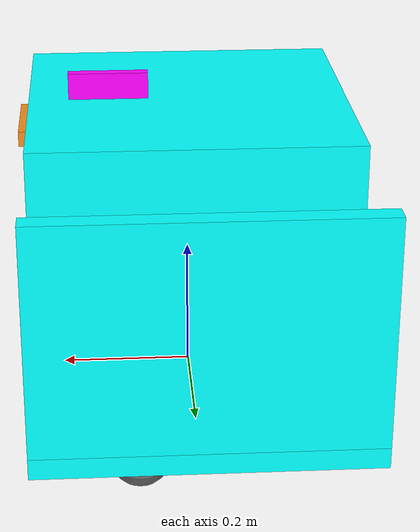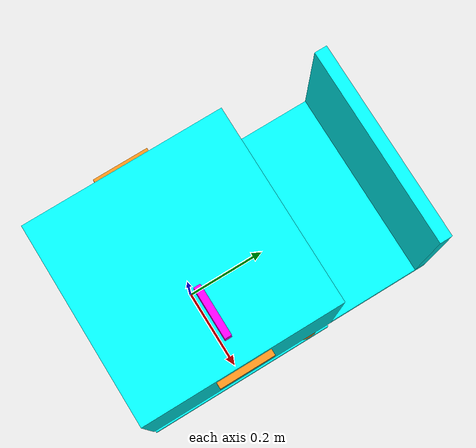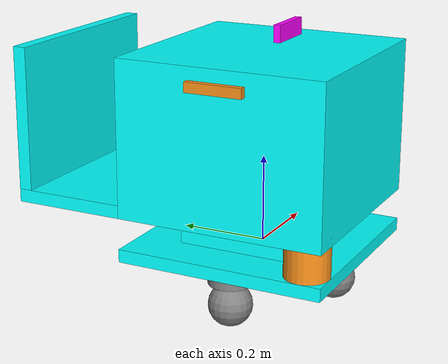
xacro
<?xml version="1.0"?>
<robot name="bot" xmlns:xacro="http://ros.org/wiki/xacro">

	<!-- Define robot constants -->
	<!-- If changed, check also 'simu_bot_driver.cpp' for publish_command() -->
	<!-- If need to change orientation, just change wheels, see wheels positions below + check lidars posiions and orientation in 'lidars_description.urdf.xacro'-->
	<xacro:property name="square1_length" value="0.48"/>
	<xacro:property name="square1_height" value="0.03"/>
	<xacro:property name="square2_length" value="0.277"/>
	<xacro:property name="square2_height" value="0.072"/>
	<xacro:property name="square3_height" value="0.36"/>
	<xacro:property name="support1_width" value="0.26"/>
	<xacro:property name="support2_height" value="0.33"/>

	<xacro:property name="wheels_radius" value="0.05"/>
	<xacro:property name="triangle_lenght" value="0.32"/> <!-- Side's Triangle length-->
	<xacro:property name="wheels_distance" value="${sqrt(((3*(triangle_lenght**4))/16)+((triangle_lenght**2)/4))}"/> <!-- Radius between origin and wheels-->
	<xacro:property name="wheels_zoffset" value="0.03"/>

	<!-- Define some commonly used intertial properties  -->
	<xacro:macro name="box_inertia" params="m w h d">
		<inertial>
		<origin xyz="0 0 0" rpy="${pi/2} 0 ${pi/2}"/>
		<mass value="${m}"/>
		<inertia ixx="${(m/12) * (h*h + d*d)}" ixy="0.0" ixz="0.0" iyy="${(m/12) * (w*w + d*d)}" iyz="0.0" izz="${(m/12) * (w*w + h*h)}"/>
		</inertial>
	</xacro:macro>

	<xacro:macro name="cylinder_inertia" params="m r h">
		<inertial>
		<origin xyz="0 0 0" rpy="${pi/2} 0 0" />
		<mass value="${m}"/>
		<inertia ixx="${(m/12) * (3*r*r + h*h)}" ixy = "0" ixz = "0" iyy="${(m/12) * (3*r*r + h*h)}" iyz = "0" izz="${(m/2) * (r*r)}"/>
		</inertial>
	</xacro:macro>

	<xacro:macro name="sphere_inertia" params="m r">
		<inertial>
		<mass value="${m}"/>
		<inertia ixx="${(2/5) * m * (r*r)}" ixy="0.0" ixz="0.0" iyy="${(2/5) * m * (r*r)}" iyz="0.0" izz="${(2/5) * m * (r*r)}"/>
		</inertial>
	</xacro:macro>

	<!-- Robot Base -->
	<!-- Dummy link may need to be added because KDL does not support root link with inertia. But simulation not working with it-->

	<link name="base_link">
		<visual>
		<geometry>
			<box size="${square1_length} ${square1_length} ${square1_height}"/>
		</geometry>
		<material name="Cyan">
			<color rgba="0 1.0 1.0 1.0"/>
		</material>
		</visual>
		<collision>
		<geometry>
			<box size="${square1_length} ${square1_length} ${square1_height}"/>
		</geometry>
		</collision>
		<xacro:box_inertia m="15" w="${square1_length}" d="${square1_length}" h="${square1_height}"/>
	</link>

	<!-- Others Robot structures -->
	<link name="base2_link">
		<visual>
		<geometry>
			<box size="${square2_length} ${square2_length} ${square2_height}"/>
		</geometry>
		<material name="Cyan">
			<color rgba="0 1.0 1.0 1.0"/>
		</material>
		</visual>
		<collision>
		<geometry>
			<box size="${square2_length} ${square2_length} ${square2_height*0.8}"/>
		</geometry>
		</collision>
		<xacro:box_inertia m="0.5" w="${square2_length}" d="${square2_length}" h="${square2_height}"/>
	</link>
	<joint name="base2_joint" type="fixed">
		<parent link="base_link"/>
		<child link="base2_link"/>
		<origin xyz="0.0 0.0 ${(square1_height/2)+(square2_height/2)}" rpy="0 0 0"/>
	</joint>

	<link name="support1_link">
		<visual>
		<geometry>
			<box size="${square1_length} ${support1_width} ${square1_height}"/>
		</geometry>
		<material name="Cyan">
			<color rgba="0 1.0 1.0 1.0"/>
		</material>
		</visual>
		<collision>
		<geometry>
			<box size="${square1_length} ${support1_width} ${square1_height}"/>
		</geometry>
		</collision>
		<xacro:box_inertia m="0.5" w="${square1_length}" d="${support1_width}" h="${square1_height}"/>
	</link>
	<joint name="support1_joint" type="fixed">
		<parent link="base3_link"/>
		<child link="support1_link"/>
		<origin xyz="0.0 ${square1_length/2 + support1_width/2} ${square1_height/2 - square3_height/2}" rpy="0 0 0"/>
	</joint>

	<link name="support2_link">
		<visual>
		<geometry>
			<box size="${square1_length} ${square1_height} ${support2_height}"/>
		</geometry>
		<material name="Cyan">
			<color rgba="0 1.0 1.0 1.0"/>
		</material>
		</visual>
		<collision>
		<geometry>
			<box size="${square1_length} ${square1_height} ${support2_height}"/>
		</geometry>
		</collision>
		<xacro:box_inertia m="0.5" w="${square1_length}" d="${square1_height}" h="${support2_height}"/>
	</link>
	<joint name="support2_joint" type="fixed">
		<parent link="support1_link"/>
		<child link="support2_link"/>
		<origin xyz="0.0 ${support1_width/2 - square1_height/2} ${support2_height/2 + square1_height/2}" rpy="0 0 0"/>
	</joint>

	<link name="base3_link">
		<visual>
		<geometry>
			<box size="${square1_length} ${square1_length} ${square3_height}"/>
		</geometry>
		<material name="Cyan">
			<color rgba="0 1.0 1.0 1.0"/>
		</material>
		</visual>
		<collision>
		<geometry>
			<box size="${square1_length} ${square1_length} ${square3_height}"/>
		</geometry>
		</collision>
		<xacro:box_inertia m="0.5" w="${square1_length}" d="${square1_length}" h="${square3_height}"/>
	</link>
	<joint name="base3_joint" type="fixed">
		<parent link="base_link"/>
		<child link="base3_link"/>
		<origin xyz="0.0 0.0 ${(square1_height/2)+square2_height+(square3_height/2)}" rpy="0 0 0"/>
	</joint>

	<link name="base4_link">
		<visual>
		<geometry>
			<box size="${square1_length/4} ${square1_length/30} ${0.04}"/>
		</geometry>
		<material name="Green">
			<color rgba="1.0 0.0 1.0 1.0"/>
		</material>
		</visual>
	</link>
	<joint name="base4_joint" type="fixed">
		<parent link="base3_link"/>
		<child link="base4_link"/>
		<origin xyz="${square1_length/2-square1_length/4} 0.0 ${(square3_height/2)+0.02}" rpy="0 0 0"/>
	</joint>

	<!-- Robot Footprint-->
	<link name="base_footprint">
		<xacro:box_inertia m="0" w="0" d="0" h="0"/>
	</link>

	<joint name="base_joint" type="fixed">
		<parent link="base_link"/>
		<child link="base_footprint"/>
		<origin xyz="0.0 0.0 ${-(wheels_radius*2+wheels_zoffset+square1_height/2)}" rpy="0 0 0"/>
	</joint>

	  <!-- 3 Wheels and there support to simulate sphere joint -->
	<xacro:macro name="wheel" params="prefix angle type">

		<!--wheel support-->
		<link name="${prefix}_sup_link">
		<visual>
			<geometry>
				<cylinder radius="${wheels_radius}" length="${wheels_zoffset}"/>
			</geometry>
			<material name="Gray">
			<color rgba="0.5 0.5 0.5 1.0"/>
			</material>
		</visual>
		<collision>
			<geometry>
			<cylinder radius="${wheels_radius}" length="${wheels_zoffset/2}"/>
			</geometry>
		</collision>
		<xacro:cylinder_inertia m="2" r="${wheels_radius}" h="${wheels_zoffset}"/>
		</link>
		<joint name="${prefix}_sup_joint" type="continuous">
			<parent link="base_link"/>
			<child link="${prefix}_sup_link"/>
			<origin xyz="${wheels_distance*cos(angle)} ${wheels_distance*sin(angle)} ${-((wheels_zoffset/2)+(square1_height/2))}" rpy="0 0 0"/>
			<axis xyz="0 0 1"/>

		</joint>

		<!--wheel-->
		<link name="${prefix}_link">
		<visual>
			<geometry>
				<sphere radius="${wheels_radius}"/>
			</geometry>
			<material name="Gray">
			<color rgba="0.5 0.5 0.5 1.0"/>
			</material>
		</visual>
		<xacro:if value="${type == 'sphere'}">
			<collision>
			<origin xyz="0 0 0" rpy="0 0 0"/>
			<geometry>
				<sphere radius="${wheels_radius}"/>
			</geometry>
			</collision>
			<xacro:sphere_inertia m="0.5" r="${wheels_radius}"/>
		</xacro:if>
		<xacro:if value="${type == 'cylinder'}">
			<collision>
			<origin xyz="0 0 0" rpy="${pi/2} 0 0"/>
			<geometry>
				<cylinder radius="${wheels_radius}" length="${wheels_radius*2}"/>
			</geometry>
			</collision>
			<xacro:cylinder_inertia m="0.5" r="${wheels_radius}" h="${wheels_radius*2}"/>
		</xacro:if>
		</link>
		<joint name="${prefix}_joint" type="continuous">
			<parent link="${prefix}_sup_link"/>
			<child link="${prefix}_link"/>
			<origin xyz="0.0 0.0 ${-wheels_radius-wheels_zoffset/2}" rpy="0 0 0"/>
			<axis xyz="0 1 0"/>
		</joint>

	</xacro:macro>

	<xacro:wheel prefix="wheel_2" angle="${pi}" type="sphere" />
	<xacro:wheel prefix="wheel_3" angle="${(2*pi/3)+pi}" type="sphere" />
	<xacro:wheel prefix="wheel_1" angle="${(-2*pi/3)+pi}" type="sphere" />

	<xacro:include filename="lidars_description.urdf.xacro"/>
	<xacro:include filename="cameras_description.urdf.xacro"/>
	<!--The simulated IMU seems to be noisy too much even with no noise set, so we don't use it for linear movement-->
	<xacro:include filename="imu_description.urdf.xacro"/>
	<xacro:include filename="gazebo_template.urdf.xacro"/>
	<xacro:include filename="ros2_control.xacro"/>

	<gazebo reference="base4_link">
		<material>Gazebo/Purple</material>
	</gazebo>

	<gazebo reference="base2_link">
		<material>Gazebo/Green</material>
	</gazebo>

</robot>

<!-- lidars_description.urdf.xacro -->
<robot name="bot" xmlns:xacro="http://ros.org/wiki/xacro">

	<!-- THIS FILE NEED TO BE INCLUDED IN 'bot_description.urdf.xacro' -->

	<!--2 LIDAR-->
	<xacro:macro name="lidar" params="prefix x y alpha">
		<link name="${prefix}_link">
			<inertial>
			<origin xyz="0 0 0" rpy="0 0 0"/>
			<mass value="0.125"/>
			<inertia ixx="0.001"  ixy="0"  ixz="0" iyy="0.001" iyz="0" izz="0.001" />
			</inertial>

			<collision>
			<origin xyz="0 0 0" rpy="0 0 0"/>
			<geometry>
				<cylinder radius="0.0508" length="${0.05}"/>
			</geometry>
			</collision>

			<visual>
			<origin xyz="0 0 0" rpy="0 0 0"/>
			<geometry>
				<cylinder radius="0.0508" length="${0.1}"/>
			</geometry>
			</visual>
		</link>

		<joint name="${prefix}_joint" type="fixed">
			<parent link="base_link"/>
			<child link="${prefix}_link"/>
			<origin xyz="${x} ${y} ${square1_height/2+0.1/2}" rpy="0 0 ${alpha}"/>
		</joint>

		<gazebo reference="${prefix}_link">
    		<!-- Instead, we need to add gazebo tags for our links that refer to Gazebo materials -->
        	<material>Gazebo/Orange</material>
			<sensor name="${prefix}" type="ray">	<!--use "gpu_ray" instead of "ray" only when having a dedicated gpu-->
			<always_on>true</always_on>
			<visualize>true</visualize>
			<update_rate>10.0</update_rate>
			<ray>
				<scan>
				<horizontal>
					<samples>360</samples>
					<resolution>1.000000</resolution>
					<min_angle>3.14159265359</min_angle> <!-- Set to π for 180 degrees  = to simulate RPlidars (We need to shift all values according to rpLidars)-->
					<max_angle>${6.28318530718+3.14159265359}</max_angle> <!-- Set to 3π for keeping 360 degres range -->
				</horizontal>
				</scan>
				<range>
				<min>0.07</min>
				<max>12.0</max>
				<resolution>0.015000</resolution>
				</range>
				<noise>
				<type>gaussian</type>
				<mean>0.0</mean>
				<stddev>0.01</stddev>
				</noise>
			</ray>
			<plugin name="${prefix}_scan" filename="libgazebo_ros_ray_sensor.so">
				<ros>
				<remapping>~/out:=${prefix}/scan</remapping>
				</ros>
				<output_type>sensor_msgs/LaserScan</output_type>
				<frame_name>${prefix}_link</frame_name>
			</plugin>
			</sensor>
		</gazebo>
	</xacro:macro>

	<xacro:lidar prefix="lidar2" x="${-((square1_length/2)-0.0508)}" y="${-((square1_length/2)-0.0508)}" alpha="${pi/4}" />
	<xacro:lidar prefix="lidar1" x="${(square1_length/2)-0.0508}" y="${(square1_length/2)-0.0508}" alpha="${-3*pi/4}" />

</robot>

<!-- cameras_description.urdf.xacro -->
<robot name="bot" xmlns:xacro="http://ros.org/wiki/xacro">

	<!-- THIS FILE NEED TO BE INCLUDED IN 'bot_description.urdf.xacro' -->

	<!-- Copied from:  zed_wrapper/urdf/zed_macro.urdf.xacro-->

	<xacro:include filename="$(find zed_wrapper)/urdf/include/materials.urdf.xacro" />
	<xacro:property name="M_PI"     value="3.1415926535897931" />

	<!--
		Parameters:
		- name: the camera's name.  should match the parameter sent to the launch file for this camera
		- model: the tye of camera, one of zed, zedm, zed2, zed2i
	-->
	<xacro:macro name="zed_camera" params="name=zed model=zed x=0.0 y=0.0 z=0.0 rot_z=0.0">

		<xacro:property name="baseline" value="0.06" />
		<xacro:property name="height" value="0.0265" />
		<xacro:property name="bottom_slope" value="0.0" />
		<xacro:property name="screw_offset_x" value="0.0" />
		<xacro:property name="screw_offset_z" value="0.0" />
		<xacro:property name="optical_offset_x" value="0.0" />

		<!-- Camera mounting point (the threaded screw hole in the bottom) -->
		<link name="${name}_camera_link">
			<visual>
			<origin xyz="0 0 0" rpy="0 0 0"/>
			<geometry>
				<box size="0.0151 0.131 0.023"/>
			</geometry>
			</visual>

			<inertial>
			<origin xyz="0 0 0" rpy="0 0 0"/>
			<mass value="0.035"/>
			<inertia ixx="0.001"  ixy="0"  ixz="0" iyy="0.001" iyz="0" izz="0.001" />
			</inertial>
		</link>

		<joint name="${name}_joint" type="continuous">
			<parent link="base3_link"/>
			<child link="${name}_camera_link"/>
			<origin xyz="${x} ${y} ${z}" rpy="0.0 0.0 ${rot_z}"/>
			<axis xyz="0 1 0"/>
		</joint>

		<!-- Camera Center -->
		<link name="${name}_camera_center">
		<visual>
			<origin xyz="${screw_offset_x} 0 ${screw_offset_z}" rpy="0 0 0"/>
			<geometry>
			<box size="0.015 0.130 0.022"/>
			</geometry>
			<material name="${model}_mat" />
		</visual>
		<collision>
			<geometry>
			<box size="0.015 0.130 0.022"/>
			</geometry>
		</collision>
		</link>
		<joint name="${name}_camera_center_joint" type="fixed">
		<parent link="${name}_camera_link"/>
		<child link="${name}_camera_center"/>
		<origin xyz="0 0 0" rpy="0 ${bottom_slope} 0" />
		</joint>

		<!-- Left Camera -->
		<link name="${name}_left_camera_frame" />
		<joint name="${name}_left_camera_joint" type="fixed">
		<parent link="${name}_camera_center"/>
		<child link="${name}_left_camera_frame"/>
		<origin xyz="${optical_offset_x} ${baseline/2} 0" rpy="0 0 0" />
		</joint>

		<link name="${name}_left_camera_optical_frame"/>
		<joint name="${name}_left_camera_optical_joint" type="fixed">
		<origin xyz="0 0 0" rpy="-${M_PI/2} 0.0 -${M_PI/2}"/>
		<parent link="${name}_left_camera_frame"/>
		<child link="${name}_left_camera_optical_frame"/>
		</joint>

		<!-- Right Camera -->
		<link name="${name}_right_camera_frame" />
		<joint name="${name}_right_camera_joint" type="fixed">
		<parent link="${name}_camera_center"/>
		<child link="${name}_right_camera_frame"/>
		<origin xyz="${optical_offset_x} -${baseline/2} 0" rpy="0 0 0" />
		</joint>

		<link name="${name}_right_camera_optical_frame"/>
		<joint name="${name}_right_camera_optical_joint" type="fixed">
		<origin xyz="0 0 0" rpy="-${M_PI/2} 0.0 -${M_PI/2}"/>
		<parent link="${name}_right_camera_frame"/>
		<child link="${name}_right_camera_optical_frame"/>
		</joint>

		<!-- IMU -->

	</xacro:macro>

	<xacro:zed_camera name="cam1" model="zedm" x="${(square1_length/2)+0.015/2}" y="0.0" z="${(square3_height/2)-0.03-0.022/2}" rot_z="0.0"/>
	<xacro:zed_camera name="cam2" model="zedm" x="${-((square1_length/2)+0.015/2)}" y="0.0" z="${(square3_height/2)-0.03-0.022/2}" rot_z="${M_PI}"/>

	<!-- DEPTH sensors, not working in xacro-->

	<!--CAMERA1 FRONT-->
	<link name="cam1_depth_frame"/>

	<joint name="cam1_depth_joint" type="fixed">
		<origin xyz="0 0 0" rpy="${-pi/2} 0 ${-pi/2}"/>
		<parent link="cam1_camera_link"/>
		<child link="cam1_depth_frame"/>
	</joint>

	<gazebo reference="cam1_camera_link">
    	<!-- Instead, we need to add gazebo tags for our links that refer to Gazebo materials -->
        <material>Gazebo/Orange</material>
		<sensor type="depth" name="cam1">
		<update_rate>10.0</update_rate>
		<camera name="cam1_cam">
			<horizontal_fov>1.57</horizontal_fov>
			<image>
			<width>200</width>
			<height>200</height>
			<format>R8G8B8</format>
			</image>
			<clip>
			<near>0.01</near>
			<far>8.0</far>
			</clip>
			<noise>
			<type>gaussian</type>
			<mean>0.0</mean>
			<stddev>0.007</stddev>
			</noise>
		</camera>
		<plugin name="depth_camera_controller" filename="libgazebo_ros_camera.so">
			<!--/cam1/zed_node/rgb/image_rect_color-->
		    <ros>
                <namespace>cam1</namespace>
                <remapping>cam1/image_raw:=zed_node/rgb/image_rect_color</remapping>
                <remapping>cam1/depth/image_raw:=depth/image_rect_raw</remapping>
                <remapping>cam1/camera_info:=camera_info</remapping>
                <remapping>cam1/depth/camera_info:=depth/camera_info</remapping>
                <remapping>cam1/points:=zed_node/point_cloud/cloud_registered</remapping>
            </ros>
			<baseline>0.2</baseline>
			<alwaysOn>true</alwaysOn>
			<updateRate>0.0</updateRate>
			<frame_name>cam1_depth_frame</frame_name>
			<pointCloudCutoff>0.1</pointCloudCutoff>
			<pointCloudCutoffMax>3.0</pointCloudCutoffMax>
			<distortionK1>0</distortionK1>
			<distortionK2>0</distortionK2>
			<distortionK3>0</distortionK3>
			<distortionT1>0</distortionT1>
			<distortionT2>0</distortionT2>
			<CxPrime>0</CxPrime>
			<Cx>0</Cx>
			<Cy>0</Cy>
			<focalLength>0</focalLength>
			<hackBaseline>0</hackBaseline>
		</plugin>
		</sensor>
	</gazebo>

	<!--CAMERA2 BACK-->
	<link name="cam2_depth_frame"/>

	<joint name="cam2_depth_joint" type="fixed">
		<origin xyz="0 0 0" rpy="${-pi/2} 0 ${-pi/2}"/>
		<parent link="cam2_camera_link"/>
		<child link="cam2_depth_frame"/>
	</joint>

	<gazebo reference="cam2_camera_link">
    	<!-- Instead, we need to add gazebo tags for our links that refer to Gazebo materials -->
        <material>Gazebo/Orange</material>
		<sensor type="depth" name="cam2">
		<update_rate>10.0</update_rate>
		<camera name="cam2_cam">
			<horizontal_fov>1.57</horizontal_fov>
			<image>
			<width>200</width>
			<height>200</height>
			<format>R8G8B8</format>
			</image>
			<clip>
			<near>0.01</near>
			<far>8.0</far>
			</clip>
			<noise>
			<type>gaussian</type>
			<mean>0.0</mean>
			<stddev>0.007</stddev>
			</noise>
		</camera>
		<plugin name="depth_camera_controller" filename="libgazebo_ros_camera.so">
			<ros>
                <namespace>cam2</namespace>
                <remapping>cam2/image_raw:=zed_node/rgb/image_rect_color</remapping>
                <remapping>cam2/depth/image_raw:=depth/image_rect_raw</remapping>
                <remapping>cam2/camera_info:=camera_info</remapping>
                <remapping>cam2/depth/camera_info:=depth/camera_info</remapping>
                <remapping>cam2/points:=zed_node/point_cloud/cloud_registered</remapping>
            </ros>
			<baseline>0.2</baseline>
			<alwaysOn>true</alwaysOn>
			<updateRate>0.0</updateRate>
			<frame_name>cam2_depth_frame</frame_name>
			<pointCloudCutoff>0.1</pointCloudCutoff>
			<pointCloudCutoffMax>3.0</pointCloudCutoffMax>
			<distortionK1>0</distortionK1>
			<distortionK2>0</distortionK2>
			<distortionK3>0</distortionK3>
			<distortionT1>0</distortionT1>
			<distortionT2>0</distortionT2>
			<CxPrime>0</CxPrime>
			<Cx>0</Cx>
			<Cy>0</Cy>
			<focalLength>0</focalLength>
			<hackBaseline>0</hackBaseline>
		</plugin>
		</sensor>
	</gazebo>

</robot>

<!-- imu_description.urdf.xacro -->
<robot name="bot" xmlns:xacro="http://ros.org/wiki/xacro">

	<!-- THIS FILE NEED TO BE INCLUDED IN 'bot_description.urdf.xacro' -->

    <link name="imu_link">
    <visual>
        <geometry>
        <box size="0.1 0.1 0.1"/>
        </geometry>
    </visual>

    <collision>
        <geometry>
        <box size="0.1 0.1 0.1"/>
        </geometry>
    </collision>

    <xacro:box_inertia m="0.1" w="0.1" d="0.1" h="0.1"/>
    </link>

    <joint name="imu_joint" type="fixed">
    <parent link="base_link"/>
    <child link="imu_link"/>
    <origin xyz="0 0 0.01"/>
    </joint>

    <gazebo reference="imu_link">
    <sensor name="imu_sensor" type="imu">
    <plugin filename="libgazebo_ros_imu_sensor.so" name="imu_plugin">
        <ros>
            <namespace>/imu_simu</namespace>
            <remapping>~/out:=data</remapping>
        </ros>
        <initial_orientation_as_reference>false</initial_orientation_as_reference>
        </plugin>
        <always_on>true</always_on>
        <update_rate>20.0</update_rate>
        <visualize>true</visualize>
        <imu>
        <angular_velocity>
            <x>
            <noise type="gaussian">
                <mean>0.0</mean>
                <stddev>2e-4</stddev>
                <bias_mean>0.0000075</bias_mean>
                <bias_stddev>0.0000008</bias_stddev>
            </noise>
            </x>
            <y>
            <noise type="gaussian">
                <mean>0.0</mean>
                <stddev>2e-4</stddev>
                <bias_mean>0.0000075</bias_mean>
                <bias_stddev>0.0000008</bias_stddev>
            </noise>
            </y>
            <z>
            <noise type="gaussian">
                <mean>0.0</mean>
                <stddev>2e-4</stddev>
                <bias_mean>0.0000075</bias_mean>
                <bias_stddev>0.0000008</bias_stddev>
            </noise>
            </z>
        </angular_velocity>
        <linear_acceleration>
        <!--If values are noisy: https://answers.gazebosim.org//question/810/is-it-possible-to-reduce-inertial-sensor-noise-by-adjusting-gazebo-parameters/-->
            <x>
            <noise type="gaussian">
                <mean>0.0</mean>
                <stddev>2e-4</stddev>
                <bias_mean>0.0000075</bias_mean>
                <bias_stddev>0.0000008</bias_stddev>
            </noise>
            </x>
            <y>
            <noise type="gaussian">
                <mean>0.0</mean>
                <stddev>2e-4</stddev>
                <bias_mean>0.0000075</bias_mean>
                <bias_stddev>0.0000008</bias_stddev>
            </noise>
            </y>
            <z>
            <noise type="gaussian">
                <mean>0.0</mean>
                <stddev>2e-4</stddev>
                <bias_mean>0.0000075</bias_mean>
                <bias_stddev>0.0000008</bias_stddev>
            </noise>
            </z>
        </linear_acceleration>
        </imu>
    </sensor>
    </gazebo>

</robot>
